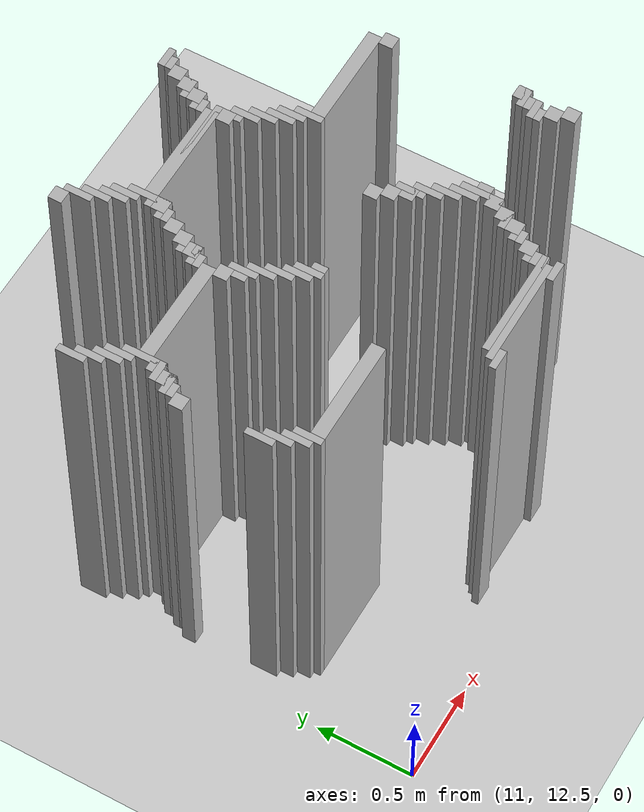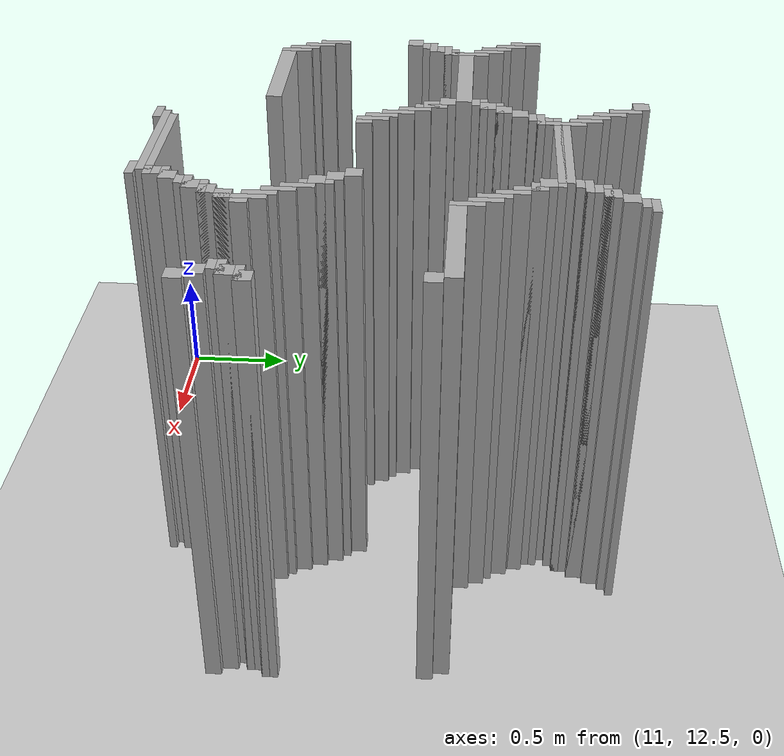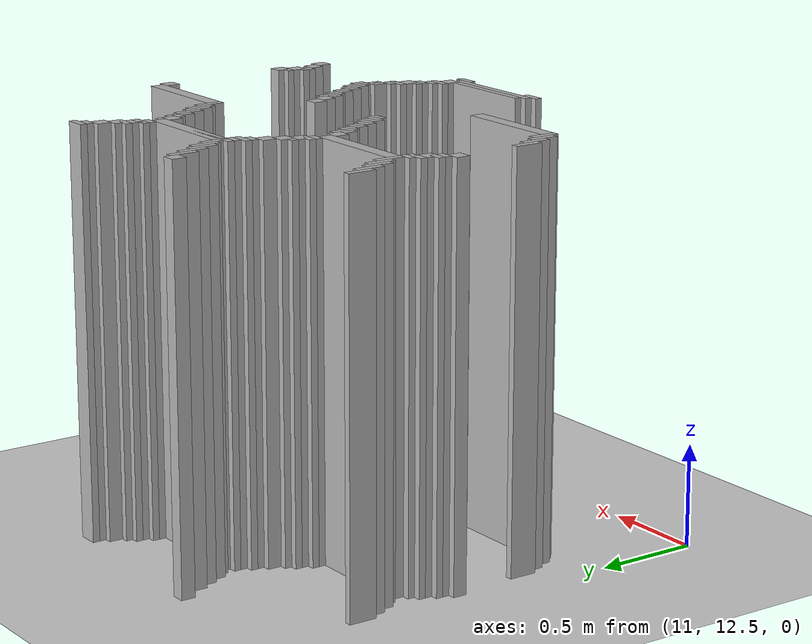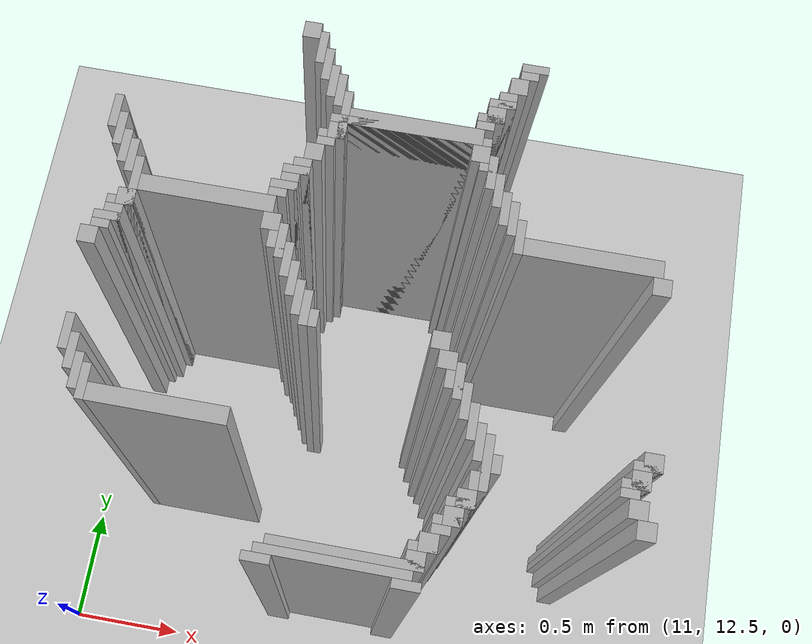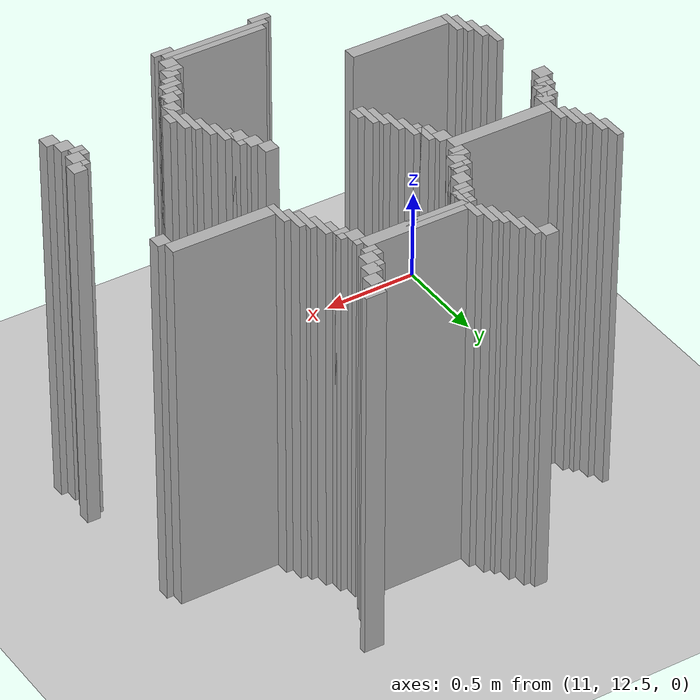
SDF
<sdf version="1.6">
 <world name="slam_world">
  <model name="ground_plane">
   <static>true</static>
   <link name="link">
    <collision name="collision">
     <geometry><plane><normal>0 0 1</normal><size>100 100</size></plane></geometry>
    </collision>
    <visual name="visual">
     <geometry><plane><normal>0 0 1</normal><size>100 100</size></plane></geometry>
     <material>
      <ambient>0.8 0.8 0.8 1</ambient>
      <diffuse>0.8 0.8 0.8 1</diffuse>
      <specular>0.8 0.8 0.8 1</specular>
     </material>
    </visual>
   </link>
  </model>
  <model name="wall_914">
   <static>true</static>
   <pose>11.79814385150812 14.756380510440835 1.0 0 0 0</pose>
   <link name="link">
    <collision name="collision">
     <geometry><box><size>0.06960556844547564 0.06960556844547564 2.0</size></box></geometry>
    </collision>
    <visual name="visual">
     <geometry><box><size>0.06960556844547564 0.06960556844547564 2.0</size></box></geometry>
     <material><ambient>0.5 0.5 0.5 1</ambient><diffuse>0.7 0.7 0.7 1</diffuse></material>
    </visual>
   </link>
  </model>
  <model name="wall_929">
   <static>true</static>
   <pose>11.850348027842227 14.68677494199536 1.0 0 0 0</pose>
   <link name="link">
    <collision name="collision">
     <geometry><box><size>0.03480278422273782 0.13921113689095127 2.0</size></box></geometry>
    </collision>
    <visual name="visual">
     <geometry><box><size>0.03480278422273782 0.13921113689095127 2.0</size></box></geometry>
     <material><ambient>0.5 0.5 0.5 1</ambient><diffuse>0.7 0.7 0.7 1</diffuse></material>
    </visual>
   </link>
  </model>
  <model name="wall_930">
   <static>true</static>
   <pose>12.685614849187935 14.738979118329466 1.0 0 0 0</pose>
   <link name="link">
    <collision name="collision">
     <geometry><box><size>0.10440835266821345 0.03480278422273782 2.0</size></box></geometry>
    </collision>
    <visual name="visual">
     <geometry><box><size>0.10440835266821345 0.03480278422273782 2.0</size></box></geometry>
     <material><ambient>0.5 0.5 0.5 1</ambient><diffuse>0.7 0.7 0.7 1</diffuse></material>
    </visual>
   </link>
  </model>
  <model name="wall_940">
   <static>true</static>
   <pose>12.668213457076565 14.704176334106728 1.0 0 0 0</pose>
   <link name="link">
    <collision name="collision">
     <geometry><box><size>0.06960556844547564 0.03480278422273782 2.0</size></box></geometry>
    </collision>
    <visual name="visual">
     <geometry><box><size>0.06960556844547564 0.03480278422273782 2.0</size></box></geometry>
     <material><ambient>0.5 0.5 0.5 1</ambient><diffuse>0.7 0.7 0.7 1</diffuse></material>
    </visual>
   </link>
  </model>
  <model name="wall_952">
   <static>true</static>
   <pose>11.885150812064964 14.617169373549883 1.0 0 0 0</pose>
   <link name="link">
    <collision name="collision">
     <geometry><box><size>0.03480278422273782 0.13921113689095127 2.0</size></box></geometry>
    </collision>
    <visual name="visual">
     <geometry><box><size>0.03480278422273782 0.13921113689095127 2.0</size></box></geometry>
     <material><ambient>0.5 0.5 0.5 1</ambient><diffuse>0.7 0.7 0.7 1</diffuse></material>
    </visual>
   </link>
  </model>
  <model name="wall_953">
   <static>true</static>
   <pose>12.633410672853827 14.65197215777262 1.0 0 0 0</pose>
   <link name="link">
    <collision name="collision">
     <geometry><box><size>0.06960556844547564 0.06960556844547564 2.0</size></box></geometry>
    </collision>
    <visual name="visual">
     <geometry><box><size>0.06960556844547564 0.06960556844547564 2.0</size></box></geometry>
     <material><ambient>0.5 0.5 0.5 1</ambient><diffuse>0.7 0.7 0.7 1</diffuse></material>
    </visual>
   </link>
  </model>
  <model name="wall_967">
   <static>true</static>
   <pose>11.919953596287703 14.547563805104408 1.0 0 0 0</pose>
   <link name="link">
    <collision name="collision">
     <geometry><box><size>0.03480278422273782 0.13921113689095127 2.0</size></box></geometry>
    </collision>
    <visual name="visual">
     <geometry><box><size>0.03480278422273782 0.13921113689095127 2.0</size></box></geometry>
     <material><ambient>0.5 0.5 0.5 1</ambient><diffuse>0.7 0.7 0.7 1</diffuse></material>
    </visual>
   </link>
  </model>
  <model name="wall_968">
   <static>true</static>
   <pose>12.59860788863109 14.582366589327146 1.0 0 0 0</pose>
   <link name="link">
    <collision name="collision">
     <geometry><box><size>0.06960556844547564 0.06960556844547564 2.0</size></box></geometry>
    </collision>
    <visual name="visual">
     <geometry><box><size>0.06960556844547564 0.06960556844547564 2.0</size></box></geometry>
     <material><ambient>0.5 0.5 0.5 1</ambient><diffuse>0.7 0.7 0.7 1</diffuse></material>
    </visual>
   </link>
  </model>
  <model name="wall_982">
   <static>true</static>
   <pose>11.95475638051044 14.512761020881669 1.0 0 0 0</pose>
   <link name="link">
    <collision name="collision">
     <geometry><box><size>0.03480278422273782 0.13921113689095127 2.0</size></box></geometry>
    </collision>
    <visual name="visual">
     <geometry><box><size>0.03480278422273782 0.13921113689095127 2.0</size></box></geometry>
     <material><ambient>0.5 0.5 0.5 1</ambient><diffuse>0.7 0.7 0.7 1</diffuse></material>
    </visual>
   </link>
  </model>
  <model name="wall_983">
   <static>true</static>
   <pose>12.581206496519721 14.564965197215777 1.0 0 0 0</pose>
   <link name="link">
    <collision name="collision">
     <geometry><box><size>0.10440835266821345 0.03480278422273782 2.0</size></box></geometry>
    </collision>
    <visual name="visual">
     <geometry><box><size>0.10440835266821345 0.03480278422273782 2.0</size></box></geometry>
     <material><ambient>0.5 0.5 0.5 1</ambient><diffuse>0.7 0.7 0.7 1</diffuse></material>
    </visual>
   </link>
  </model>
  <model name="wall_991">
   <static>true</static>
   <pose>12.563805104408353 14.512761020881669 1.0 0 0 0</pose>
   <link name="link">
    <collision name="collision">
     <geometry><box><size>0.06960556844547564 0.06960556844547564 2.0</size></box></geometry>
    </collision>
    <visual name="visual">
     <geometry><box><size>0.06960556844547564 0.06960556844547564 2.0</size></box></geometry>
     <material><ambient>0.5 0.5 0.5 1</ambient><diffuse>0.7 0.7 0.7 1</diffuse></material>
    </visual>
   </link>
  </model>
  <model name="wall_1003">
   <static>true</static>
   <pose>11.989559164733178 14.408352668213457 1.0 0 0 0</pose>
   <link name="link">
    <collision name="collision">
     <geometry><box><size>0.03480278422273782 0.2088167053364269 2.0</size></box></geometry>
    </collision>
    <visual name="visual">
     <geometry><box><size>0.03480278422273782 0.2088167053364269 2.0</size></box></geometry>
     <material><ambient>0.5 0.5 0.5 1</ambient><diffuse>0.7 0.7 0.7 1</diffuse></material>
    </visual>
   </link>
  </model>
  <model name="wall_1004">
   <static>true</static>
   <pose>12.546403712296984 14.4953596287703 1.0 0 0 0</pose>
   <link name="link">
    <collision name="collision">
     <geometry><box><size>0.10440835266821345 0.03480278422273782 2.0</size></box></geometry>
    </collision>
    <visual name="visual">
     <geometry><box><size>0.10440835266821345 0.03480278422273782 2.0</size></box></geometry>
     <material><ambient>0.5 0.5 0.5 1</ambient><diffuse>0.7 0.7 0.7 1</diffuse></material>
    </visual>
   </link>
  </model>
  <model name="wall_1012">
   <static>true</static>
   <pose>12.529002320185615 14.460556844547563 1.0 0 0 0</pose>
   <link name="link">
    <collision name="collision">
     <geometry><box><size>0.06960556844547564 0.03480278422273782 2.0</size></box></geometry>
    </collision>
    <visual name="visual">
     <geometry><box><size>0.06960556844547564 0.03480278422273782 2.0</size></box></geometry>
     <material><ambient>0.5 0.5 0.5 1</ambient><diffuse>0.7 0.7 0.7 1</diffuse></material>
    </visual>
   </link>
  </model>
  <model name="wall_1023">
   <static>true</static>
   <pose>12.267981438515081 14.408352668213457 1.0 0 0 0</pose>
   <link name="link">
    <collision name="collision">
     <geometry><box><size>0.5220417633410672 0.06960556844547564 2.0</size></box></geometry>
    </collision>
    <visual name="visual">
     <geometry><box><size>0.5220417633410672 0.06960556844547564 2.0</size></box></geometry>
     <material><ambient>0.5 0.5 0.5 1</ambient><diffuse>0.7 0.7 0.7 1</diffuse></material>
    </visual>
   </link>
  </model>
  <model name="wall_1035">
   <static>true</static>
   <pose>12.250580046403712 14.390951276102088 1.0 0 0 0</pose>
   <link name="link">
    <collision name="collision">
     <geometry><box><size>0.6264501160092807 0.03480278422273782 2.0</size></box></geometry>
    </collision>
    <visual name="visual">
     <geometry><box><size>0.6264501160092807 0.03480278422273782 2.0</size></box></geometry>
     <material><ambient>0.5 0.5 0.5 1</ambient><diffuse>0.7 0.7 0.7 1</diffuse></material>
    </visual>
   </link>
  </model>
  <model name="wall_1047">
   <static>true</static>
   <pose>11.97215777262181 14.33874709976798 1.0 0 0 0</pose>
   <link name="link">
    <collision name="collision">
     <geometry><box><size>0.06960556844547564 0.06960556844547564 2.0</size></box></geometry>
    </collision>
    <visual name="visual">
     <geometry><box><size>0.06960556844547564 0.06960556844547564 2.0</size></box></geometry>
     <material><ambient>0.5 0.5 0.5 1</ambient><diffuse>0.7 0.7 0.7 1</diffuse></material>
    </visual>
   </link>
  </model>
  <model name="wall_1048">
   <static>true</static>
   <pose>12.529002320185615 14.33874709976798 1.0 0 0 0</pose>
   <link name="link">
    <collision name="collision">
     <geometry><box><size>0.06960556844547564 0.06960556844547564 2.0</size></box></geometry>
    </collision>
    <visual name="visual">
     <geometry><box><size>0.06960556844547564 0.06960556844547564 2.0</size></box></geometry>
     <material><ambient>0.5 0.5 0.5 1</ambient><diffuse>0.7 0.7 0.7 1</diffuse></material>
    </visual>
   </link>
  </model>
  <model name="wall_1059">
   <static>true</static>
   <pose>11.119489559164732 14.269141531322505 1.0 0 0 0</pose>
   <link name="link">
    <collision name="collision">
     <geometry><box><size>0.03480278422273782 0.13921113689095127 2.0</size></box></geometry>
    </collision>
    <visual name="visual">
     <geometry><box><size>0.03480278422273782 0.13921113689095127 2.0</size></box></geometry>
     <material><ambient>0.5 0.5 0.5 1</ambient><diffuse>0.7 0.7 0.7 1</diffuse></material>
    </visual>
   </link>
  </model>
  <model name="wall_1060">
   <static>true</static>
   <pose>11.95475638051044 14.321345707656612 1.0 0 0 0</pose>
   <link name="link">
    <collision name="collision">
     <geometry><box><size>0.10440835266821345 0.03480278422273782 2.0</size></box></geometry>
    </collision>
    <visual name="visual">
     <geometry><box><size>0.10440835266821345 0.03480278422273782 2.0</size></box></geometry>
     <material><ambient>0.5 0.5 0.5 1</ambient><diffuse>0.7 0.7 0.7 1</diffuse></material>
    </visual>
   </link>
  </model>
  <model name="wall_1061">
   <static>true</static>
   <pose>12.581206496519721 14.269141531322505 1.0 0 0 0</pose>
   <link name="link">
    <collision name="collision">
     <geometry><box><size>0.03480278422273782 0.13921113689095127 2.0</size></box></geometry>
    </collision>
    <visual name="visual">
     <geometry><box><size>0.03480278422273782 0.13921113689095127 2.0</size></box></geometry>
     <material><ambient>0.5 0.5 0.5 1</ambient><diffuse>0.7 0.7 0.7 1</diffuse></material>
    </visual>
   </link>
  </model>
  <model name="wall_1069">
   <static>true</static>
   <pose>11.937354988399072 14.286542923433874 1.0 0 0 0</pose>
   <link name="link">
    <collision name="collision">
     <geometry><box><size>0.06960556844547564 0.03480278422273782 2.0</size></box></geometry>
    </collision>
    <visual name="visual">
     <geometry><box><size>0.06960556844547564 0.03480278422273782 2.0</size></box></geometry>
     <material><ambient>0.5 0.5 0.5 1</ambient><diffuse>0.7 0.7 0.7 1</diffuse></material>
    </visual>
   </link>
  </model>
  <model name="wall_1070">
   <static>true</static>
   <pose>12.563805104408353 14.286542923433874 1.0 0 0 0</pose>
   <link name="link">
    <collision name="collision">
     <geometry><box><size>0.06960556844547564 0.03480278422273782 2.0</size></box></geometry>
    </collision>
    <visual name="visual">
     <geometry><box><size>0.06960556844547564 0.03480278422273782 2.0</size></box></geometry>
     <material><ambient>0.5 0.5 0.5 1</ambient><diffuse>0.7 0.7 0.7 1</diffuse></material>
    </visual>
   </link>
  </model>
  <model name="wall_1080">
   <static>true</static>
   <pose>11.154292343387471 14.199535962877029 1.0 0 0 0</pose>
   <link name="link">
    <collision name="collision">
     <geometry><box><size>0.03480278422273782 0.13921113689095127 2.0</size></box></geometry>
    </collision>
    <visual name="visual">
     <geometry><box><size>0.03480278422273782 0.13921113689095127 2.0</size></box></geometry>
     <material><ambient>0.5 0.5 0.5 1</ambient><diffuse>0.7 0.7 0.7 1</diffuse></material>
    </visual>
   </link>
  </model>
  <model name="wall_1081">
   <static>true</static>
   <pose>11.902552204176333 14.234338747099768 1.0 0 0 0</pose>
   <link name="link">
    <collision name="collision">
     <geometry><box><size>0.06960556844547564 0.06960556844547564 2.0</size></box></geometry>
    </collision>
    <visual name="visual">
     <geometry><box><size>0.06960556844547564 0.06960556844547564 2.0</size></box></geometry>
     <material><ambient>0.5 0.5 0.5 1</ambient><diffuse>0.7 0.7 0.7 1</diffuse></material>
    </visual>
   </link>
  </model>
  <model name="wall_1082">
   <static>true</static>
   <pose>12.616009280742459 14.199535962877029 1.0 0 0 0</pose>
   <link name="link">
    <collision name="collision">
     <geometry><box><size>0.03480278422273782 0.13921113689095127 2.0</size></box></geometry>
    </collision>
    <visual name="visual">
     <geometry><box><size>0.03480278422273782 0.13921113689095127 2.0</size></box></geometry>
     <material><ambient>0.5 0.5 0.5 1</ambient><diffuse>0.7 0.7 0.7 1</diffuse></material>
    </visual>
   </link>
  </model>
  <model name="wall_1093">
   <static>true</static>
   <pose>11.189095127610209 14.129930394431554 1.0 0 0 0</pose>
   <link name="link">
    <collision name="collision">
     <geometry><box><size>0.03480278422273782 0.13921113689095127 2.0</size></box></geometry>
    </collision>
    <visual name="visual">
     <geometry><box><size>0.03480278422273782 0.13921113689095127 2.0</size></box></geometry>
     <material><ambient>0.5 0.5 0.5 1</ambient><diffuse>0.7 0.7 0.7 1</diffuse></material>
    </visual>
   </link>
  </model>
  <model name="wall_1094">
   <static>true</static>
   <pose>11.867749419953595 14.164733178654291 1.0 0 0 0</pose>
   <link name="link">
    <collision name="collision">
     <geometry><box><size>0.06960556844547564 0.06960556844547564 2.0</size></box></geometry>
    </collision>
    <visual name="visual">
     <geometry><box><size>0.06960556844547564 0.06960556844547564 2.0</size></box></geometry>
     <material><ambient>0.5 0.5 0.5 1</ambient><diffuse>0.7 0.7 0.7 1</diffuse></material>
    </visual>
   </link>
  </model>
  <model name="wall_1095">
   <static>true</static>
   <pose>12.650812064965196 14.129930394431554 1.0 0 0 0</pose>
   <link name="link">
    <collision name="collision">
     <geometry><box><size>0.03480278422273782 0.13921113689095127 2.0</size></box></geometry>
    </collision>
    <visual name="visual">
     <geometry><box><size>0.03480278422273782 0.13921113689095127 2.0</size></box></geometry>
     <material><ambient>0.5 0.5 0.5 1</ambient><diffuse>0.7 0.7 0.7 1</diffuse></material>
    </visual>
   </link>
  </model>
  <model name="wall_1106">
   <static>true</static>
   <pose>11.223897911832946 14.095127610208817 1.0 0 0 0</pose>
   <link name="link">
    <collision name="collision">
     <geometry><box><size>0.03480278422273782 0.13921113689095127 2.0</size></box></geometry>
    </collision>
    <visual name="visual">
     <geometry><box><size>0.03480278422273782 0.13921113689095127 2.0</size></box></geometry>
     <material><ambient>0.5 0.5 0.5 1</ambient><diffuse>0.7 0.7 0.7 1</diffuse></material>
    </visual>
   </link>
  </model>
  <model name="wall_1107">
   <static>true</static>
   <pose>11.850348027842227 14.147331786542923 1.0 0 0 0</pose>
   <link name="link">
    <collision name="collision">
     <geometry><box><size>0.10440835266821345 0.03480278422273782 2.0</size></box></geometry>
    </collision>
    <visual name="visual">
     <geometry><box><size>0.10440835266821345 0.03480278422273782 2.0</size></box></geometry>
     <material><ambient>0.5 0.5 0.5 1</ambient><diffuse>0.7 0.7 0.7 1</diffuse></material>
    </visual>
   </link>
  </model>
  <model name="wall_1108">
   <static>true</static>
   <pose>12.685614849187935 14.095127610208817 1.0 0 0 0</pose>
   <link name="link">
    <collision name="collision">
     <geometry><box><size>0.03480278422273782 0.13921113689095127 2.0</size></box></geometry>
    </collision>
    <visual name="visual">
     <geometry><box><size>0.03480278422273782 0.13921113689095127 2.0</size></box></geometry>
     <material><ambient>0.5 0.5 0.5 1</ambient><diffuse>0.7 0.7 0.7 1</diffuse></material>
    </visual>
   </link>
  </model>
  <model name="wall_1116">
   <static>true</static>
   <pose>11.832946635730858 14.095127610208817 1.0 0 0 0</pose>
   <link name="link">
    <collision name="collision">
     <geometry><box><size>0.06960556844547564 0.06960556844547564 2.0</size></box></geometry>
    </collision>
    <visual name="visual">
     <geometry><box><size>0.06960556844547564 0.06960556844547564 2.0</size></box></geometry>
     <material><ambient>0.5 0.5 0.5 1</ambient><diffuse>0.7 0.7 0.7 1</diffuse></material>
    </visual>
   </link>
  </model>
  <model name="wall_1126">
   <static>true</static>
   <pose>11.258700696055683 13.990719257540603 1.0 0 0 0</pose>
   <link name="link">
    <collision name="collision">
     <geometry><box><size>0.03480278422273782 0.2088167053364269 2.0</size></box></geometry>
    </collision>
    <visual name="visual">
     <geometry><box><size>0.03480278422273782 0.2088167053364269 2.0</size></box></geometry>
     <material><ambient>0.5 0.5 0.5 1</ambient><diffuse>0.7 0.7 0.7 1</diffuse></material>
    </visual>
   </link>
  </model>
  <model name="wall_1127">
   <static>true</static>
   <pose>11.81554524361949 14.077726218097448 1.0 0 0 0</pose>
   <link name="link">
    <collision name="collision">
     <geometry><box><size>0.10440835266821345 0.03480278422273782 2.0</size></box></geometry>
    </collision>
    <visual name="visual">
     <geometry><box><size>0.10440835266821345 0.03480278422273782 2.0</size></box></geometry>
     <material><ambient>0.5 0.5 0.5 1</ambient><diffuse>0.7 0.7 0.7 1</diffuse></material>
    </visual>
   </link>
  </model>
  <model name="wall_1128">
   <static>true</static>
   <pose>12.720417633410673 14.02552204176334 1.0 0 0 0</pose>
   <link name="link">
    <collision name="collision">
     <geometry><box><size>0.03480278422273782 0.13921113689095127 2.0</size></box></geometry>
    </collision>
    <visual name="visual">
     <geometry><box><size>0.03480278422273782 0.13921113689095127 2.0</size></box></geometry>
     <material><ambient>0.5 0.5 0.5 1</ambient><diffuse>0.7 0.7 0.7 1</diffuse></material>
    </visual>
   </link>
  </model>
  <model name="wall_1136">
   <static>true</static>
   <pose>11.79814385150812 14.042923433874709 1.0 0 0 0</pose>
   <link name="link">
    <collision name="collision">
     <geometry><box><size>0.06960556844547564 0.03480278422273782 2.0</size></box></geometry>
    </collision>
    <visual name="visual">
     <geometry><box><size>0.06960556844547564 0.03480278422273782 2.0</size></box></geometry>
     <material><ambient>0.5 0.5 0.5 1</ambient><diffuse>0.7 0.7 0.7 1</diffuse></material>
    </visual>
   </link>
  </model>
  <model name="wall_1148">
   <static>true</static>
   <pose>11.537122969837586 13.990719257540603 1.0 0 0 0</pose>
   <link name="link">
    <collision name="collision">
     <geometry><box><size>0.5220417633410672 0.06960556844547564 2.0</size></box></geometry>
    </collision>
    <visual name="visual">
     <geometry><box><size>0.5220417633410672 0.06960556844547564 2.0</size></box></geometry>
     <material><ambient>0.5 0.5 0.5 1</ambient><diffuse>0.7 0.7 0.7 1</diffuse></material>
    </visual>
   </link>
  </model>
  <model name="wall_1149">
   <static>true</static>
   <pose>12.998839907192576 13.990719257540603 1.0 0 0 0</pose>
   <link name="link">
    <collision name="collision">
     <geometry><box><size>0.5220417633410672 0.06960556844547564 2.0</size></box></geometry>
    </collision>
    <visual name="visual">
     <geometry><box><size>0.5220417633410672 0.06960556844547564 2.0</size></box></geometry>
     <material><ambient>0.5 0.5 0.5 1</ambient><diffuse>0.7 0.7 0.7 1</diffuse></material>
    </visual>
   </link>
  </model>
  <model name="wall_1163">
   <static>true</static>
   <pose>11.241299303944315 13.921113689095128 1.0 0 0 0</pose>
   <link name="link">
    <collision name="collision">
     <geometry><box><size>0.06960556844547564 0.06960556844547564 2.0</size></box></geometry>
    </collision>
    <visual name="visual">
     <geometry><box><size>0.06960556844547564 0.06960556844547564 2.0</size></box></geometry>
     <material><ambient>0.5 0.5 0.5 1</ambient><diffuse>0.7 0.7 0.7 1</diffuse></material>
    </visual>
   </link>
  </model>
  <model name="wall_1164">
   <static>true</static>
   <pose>11.79814385150812 13.921113689095128 1.0 0 0 0</pose>
   <link name="link">
    <collision name="collision">
     <geometry><box><size>0.06960556844547564 0.06960556844547564 2.0</size></box></geometry>
    </collision>
    <visual name="visual">
     <geometry><box><size>0.06960556844547564 0.06960556844547564 2.0</size></box></geometry>
     <material><ambient>0.5 0.5 0.5 1</ambient><diffuse>0.7 0.7 0.7 1</diffuse></material>
    </visual>
   </link>
  </model>
  <model name="wall_1165">
   <static>true</static>
   <pose>13.259860788863108 13.921113689095128 1.0 0 0 0</pose>
   <link name="link">
    <collision name="collision">
     <geometry><box><size>0.06960556844547564 0.06960556844547564 2.0</size></box></geometry>
    </collision>
    <visual name="visual">
     <geometry><box><size>0.06960556844547564 0.06960556844547564 2.0</size></box></geometry>
     <material><ambient>0.5 0.5 0.5 1</ambient><diffuse>0.7 0.7 0.7 1</diffuse></material>
    </visual>
   </link>
  </model>
  <model name="wall_1179">
   <static>true</static>
   <pose>11.223897911832946 13.903712296983759 1.0 0 0 0</pose>
   <link name="link">
    <collision name="collision">
     <geometry><box><size>0.10440835266821345 0.03480278422273782 2.0</size></box></geometry>
    </collision>
    <visual name="visual">
     <geometry><box><size>0.10440835266821345 0.03480278422273782 2.0</size></box></geometry>
     <material><ambient>0.5 0.5 0.5 1</ambient><diffuse>0.7 0.7 0.7 1</diffuse></material>
    </visual>
   </link>
  </model>
  <model name="wall_1180">
   <static>true</static>
   <pose>11.850348027842227 13.851508120649651 1.0 0 0 0</pose>
   <link name="link">
    <collision name="collision">
     <geometry><box><size>0.03480278422273782 0.13921113689095127 2.0</size></box></geometry>
    </collision>
    <visual name="visual">
     <geometry><box><size>0.03480278422273782 0.13921113689095127 2.0</size></box></geometry>
     <material><ambient>0.5 0.5 0.5 1</ambient><diffuse>0.7 0.7 0.7 1</diffuse></material>
    </visual>
   </link>
  </model>
  <model name="wall_1195">
   <static>true</static>
   <pose>11.206496519721577 13.851508120649651 1.0 0 0 0</pose>
   <link name="link">
    <collision name="collision">
     <geometry><box><size>0.06960556844547564 0.06960556844547564 2.0</size></box></geometry>
    </collision>
    <visual name="visual">
     <geometry><box><size>0.06960556844547564 0.06960556844547564 2.0</size></box></geometry>
     <material><ambient>0.5 0.5 0.5 1</ambient><diffuse>0.7 0.7 0.7 1</diffuse></material>
    </visual>
   </link>
  </model>
  <model name="wall_1196">
   <static>true</static>
   <pose>11.832946635730858 13.851508120649651 1.0 0 0 0</pose>
   <link name="link">
    <collision name="collision">
     <geometry><box><size>0.06960556844547564 0.06960556844547564 2.0</size></box></geometry>
    </collision>
    <visual name="visual">
     <geometry><box><size>0.06960556844547564 0.06960556844547564 2.0</size></box></geometry>
     <material><ambient>0.5 0.5 0.5 1</ambient><diffuse>0.7 0.7 0.7 1</diffuse></material>
    </visual>
   </link>
  </model>
  <model name="wall_1211">
   <static>true</static>
   <pose>11.189095127610209 13.834106728538282 1.0 0 0 0</pose>
   <link name="link">
    <collision name="collision">
     <geometry><box><size>0.10440835266821345 0.03480278422273782 2.0</size></box></geometry>
    </collision>
    <visual name="visual">
     <geometry><box><size>0.10440835266821345 0.03480278422273782 2.0</size></box></geometry>
     <material><ambient>0.5 0.5 0.5 1</ambient><diffuse>0.7 0.7 0.7 1</diffuse></material>
    </visual>
   </link>
  </model>
  <model name="wall_1212">
   <static>true</static>
   <pose>11.885150812064964 13.781902552204176 1.0 0 0 0</pose>
   <link name="link">
    <collision name="collision">
     <geometry><box><size>0.03480278422273782 0.13921113689095127 2.0</size></box></geometry>
    </collision>
    <visual name="visual">
     <geometry><box><size>0.03480278422273782 0.13921113689095127 2.0</size></box></geometry>
     <material><ambient>0.5 0.5 0.5 1</ambient><diffuse>0.7 0.7 0.7 1</diffuse></material>
    </visual>
   </link>
  </model>
  <model name="wall_1222">
   <static>true</static>
   <pose>11.17169373549884 13.799303944315545 1.0 0 0 0</pose>
   <link name="link">
    <collision name="collision">
     <geometry><box><size>0.06960556844547564 0.03480278422273782 2.0</size></box></geometry>
    </collision>
    <visual name="visual">
     <geometry><box><size>0.06960556844547564 0.03480278422273782 2.0</size></box></geometry>
     <material><ambient>0.5 0.5 0.5 1</ambient><diffuse>0.7 0.7 0.7 1</diffuse></material>
    </visual>
   </link>
  </model>
  <model name="wall_1235">
   <static>true</static>
   <pose>11.1368909512761 13.747099767981437 1.0 0 0 0</pose>
   <link name="link">
    <collision name="collision">
     <geometry><box><size>0.06960556844547564 0.06960556844547564 2.0</size></box></geometry>
    </collision>
    <visual name="visual">
     <geometry><box><size>0.06960556844547564 0.06960556844547564 2.0</size></box></geometry>
     <material><ambient>0.5 0.5 0.5 1</ambient><diffuse>0.7 0.7 0.7 1</diffuse></material>
    </visual>
   </link>
  </model>
  <model name="wall_1236">
   <static>true</static>
   <pose>11.919953596287703 13.7122969837587 1.0 0 0 0</pose>
   <link name="link">
    <collision name="collision">
     <geometry><box><size>0.03480278422273782 0.13921113689095127 2.0</size></box></geometry>
    </collision>
    <visual name="visual">
     <geometry><box><size>0.03480278422273782 0.13921113689095127 2.0</size></box></geometry>
     <material><ambient>0.5 0.5 0.5 1</ambient><diffuse>0.7 0.7 0.7 1</diffuse></material>
    </visual>
   </link>
  </model>
  <model name="wall_1252">
   <static>true</static>
   <pose>11.95475638051044 13.642691415313225 1.0 0 0 0</pose>
   <link name="link">
    <collision name="collision">
     <geometry><box><size>0.03480278422273782 0.13921113689095127 2.0</size></box></geometry>
    </collision>
    <visual name="visual">
     <geometry><box><size>0.03480278422273782 0.13921113689095127 2.0</size></box></geometry>
     <material><ambient>0.5 0.5 0.5 1</ambient><diffuse>0.7 0.7 0.7 1</diffuse></material>
    </visual>
   </link>
  </model>
  <model name="wall_1268">
   <static>true</static>
   <pose>11.989559164733178 13.607888631090487 1.0 0 0 0</pose>
   <link name="link">
    <collision name="collision">
     <geometry><box><size>0.03480278422273782 0.13921113689095127 2.0</size></box></geometry>
    </collision>
    <visual name="visual">
     <geometry><box><size>0.03480278422273782 0.13921113689095127 2.0</size></box></geometry>
     <material><ambient>0.5 0.5 0.5 1</ambient><diffuse>0.7 0.7 0.7 1</diffuse></material>
    </visual>
   </link>
  </model>
  <model name="wall_1291">
   <static>true</static>
   <pose>12.024361948955915 13.573085846867748 1.0 0 0 0</pose>
   <link name="link">
    <collision name="collision">
     <geometry><box><size>0.03480278422273782 0.06960556844547564 2.0</size></box></geometry>
    </collision>
    <visual name="visual">
     <geometry><box><size>0.03480278422273782 0.06960556844547564 2.0</size></box></geometry>
     <material><ambient>0.5 0.5 0.5 1</ambient><diffuse>0.7 0.7 0.7 1</diffuse></material>
    </visual>
   </link>
  </model>
  <model name="wall_1292">
   <static>true</static>
   <pose>12.494199535962876 13.573085846867748 1.0 0 0 0</pose>
   <link name="link">
    <collision name="collision">
     <geometry><box><size>0.06960556844547564 0.06960556844547564 2.0</size></box></geometry>
    </collision>
    <visual name="visual">
     <geometry><box><size>0.06960556844547564 0.06960556844547564 2.0</size></box></geometry>
     <material><ambient>0.5 0.5 0.5 1</ambient><diffuse>0.7 0.7 0.7 1</diffuse></material>
    </visual>
   </link>
  </model>
  <model name="wall_1314">
   <static>true</static>
   <pose>12.529002320185615 13.503480278422273 1.0 0 0 0</pose>
   <link name="link">
    <collision name="collision">
     <geometry><box><size>0.06960556844547564 0.06960556844547564 2.0</size></box></geometry>
    </collision>
    <visual name="visual">
     <geometry><box><size>0.06960556844547564 0.06960556844547564 2.0</size></box></geometry>
     <material><ambient>0.5 0.5 0.5 1</ambient><diffuse>0.7 0.7 0.7 1</diffuse></material>
    </visual>
   </link>
  </model>
  <model name="wall_1328">
   <static>true</static>
   <pose>12.581206496519721 13.433874709976797 1.0 0 0 0</pose>
   <link name="link">
    <collision name="collision">
     <geometry><box><size>0.03480278422273782 0.13921113689095127 2.0</size></box></geometry>
    </collision>
    <visual name="visual">
     <geometry><box><size>0.03480278422273782 0.13921113689095127 2.0</size></box></geometry>
     <material><ambient>0.5 0.5 0.5 1</ambient><diffuse>0.7 0.7 0.7 1</diffuse></material>
    </visual>
   </link>
  </model>
  <model name="wall_1342">
   <static>true</static>
   <pose>12.563805104408353 13.433874709976797 1.0 0 0 0</pose>
   <link name="link">
    <collision name="collision">
     <geometry><box><size>0.06960556844547564 0.06960556844547564 2.0</size></box></geometry>
    </collision>
    <visual name="visual">
     <geometry><box><size>0.06960556844547564 0.06960556844547564 2.0</size></box></geometry>
     <material><ambient>0.5 0.5 0.5 1</ambient><diffuse>0.7 0.7 0.7 1</diffuse></material>
    </visual>
   </link>
  </model>
  <model name="wall_1355">
   <static>true</static>
   <pose>11.154292343387471 13.364269141531322 1.0 0 0 0</pose>
   <link name="link">
    <collision name="collision">
     <geometry><box><size>0.03480278422273782 0.13921113689095127 2.0</size></box></geometry>
    </collision>
    <visual name="visual">
     <geometry><box><size>0.03480278422273782 0.13921113689095127 2.0</size></box></geometry>
     <material><ambient>0.5 0.5 0.5 1</ambient><diffuse>0.7 0.7 0.7 1</diffuse></material>
    </visual>
   </link>
  </model>
  <model name="wall_1356">
   <static>true</static>
   <pose>12.616009280742459 13.364269141531322 1.0 0 0 0</pose>
   <link name="link">
    <collision name="collision">
     <geometry><box><size>0.03480278422273782 0.13921113689095127 2.0</size></box></geometry>
    </collision>
    <visual name="visual">
     <geometry><box><size>0.03480278422273782 0.13921113689095127 2.0</size></box></geometry>
     <material><ambient>0.5 0.5 0.5 1</ambient><diffuse>0.7 0.7 0.7 1</diffuse></material>
    </visual>
   </link>
  </model>
  <model name="wall_1378">
   <static>true</static>
   <pose>11.189095127610209 13.294663573085847 1.0 0 0 0</pose>
   <link name="link">
    <collision name="collision">
     <geometry><box><size>0.03480278422273782 0.13921113689095127 2.0</size></box></geometry>
    </collision>
    <visual name="visual">
     <geometry><box><size>0.03480278422273782 0.13921113689095127 2.0</size></box></geometry>
     <material><ambient>0.5 0.5 0.5 1</ambient><diffuse>0.7 0.7 0.7 1</diffuse></material>
    </visual>
   </link>
  </model>
  <model name="wall_1379">
   <static>true</static>
   <pose>12.650812064965196 13.294663573085847 1.0 0 0 0</pose>
   <link name="link">
    <collision name="collision">
     <geometry><box><size>0.03480278422273782 0.13921113689095127 2.0</size></box></geometry>
    </collision>
    <visual name="visual">
     <geometry><box><size>0.03480278422273782 0.13921113689095127 2.0</size></box></geometry>
     <material><ambient>0.5 0.5 0.5 1</ambient><diffuse>0.7 0.7 0.7 1</diffuse></material>
    </visual>
   </link>
  </model>
  <model name="wall_1392">
   <static>true</static>
   <pose>11.223897911832946 13.22505800464037 1.0 0 0 0</pose>
   <link name="link">
    <collision name="collision">
     <geometry><box><size>0.03480278422273782 0.13921113689095127 2.0</size></box></geometry>
    </collision>
    <visual name="visual">
     <geometry><box><size>0.03480278422273782 0.13921113689095127 2.0</size></box></geometry>
     <material><ambient>0.5 0.5 0.5 1</ambient><diffuse>0.7 0.7 0.7 1</diffuse></material>
    </visual>
   </link>
  </model>
  <model name="wall_1393">
   <static>true</static>
   <pose>12.685614849187935 13.22505800464037 1.0 0 0 0</pose>
   <link name="link">
    <collision name="collision">
     <geometry><box><size>0.03480278422273782 0.13921113689095127 2.0</size></box></geometry>
    </collision>
    <visual name="visual">
     <geometry><box><size>0.03480278422273782 0.13921113689095127 2.0</size></box></geometry>
     <material><ambient>0.5 0.5 0.5 1</ambient><diffuse>0.7 0.7 0.7 1</diffuse></material>
    </visual>
   </link>
  </model>
  <model name="wall_1394">
   <static>true</static>
   <pose>13.294663573085847 13.259860788863108 1.0 0 0 0</pose>
   <link name="link">
    <collision name="collision">
     <geometry><box><size>0.06960556844547564 0.06960556844547564 2.0</size></box></geometry>
    </collision>
    <visual name="visual">
     <geometry><box><size>0.06960556844547564 0.06960556844547564 2.0</size></box></geometry>
     <material><ambient>0.5 0.5 0.5 1</ambient><diffuse>0.7 0.7 0.7 1</diffuse></material>
    </visual>
   </link>
  </model>
  <model name="wall_1406">
   <static>true</static>
   <pose>11.258700696055683 13.190255220417633 1.0 0 0 0</pose>
   <link name="link">
    <collision name="collision">
     <geometry><box><size>0.03480278422273782 0.13921113689095127 2.0</size></box></geometry>
    </collision>
    <visual name="visual">
     <geometry><box><size>0.03480278422273782 0.13921113689095127 2.0</size></box></geometry>
     <material><ambient>0.5 0.5 0.5 1</ambient><diffuse>0.7 0.7 0.7 1</diffuse></material>
    </visual>
   </link>
  </model>
  <model name="wall_1407">
   <static>true</static>
   <pose>12.720417633410673 13.155452436194896 1.0 0 0 0</pose>
   <link name="link">
    <collision name="collision">
     <geometry><box><size>0.03480278422273782 0.2088167053364269 2.0</size></box></geometry>
    </collision>
    <visual name="visual">
     <geometry><box><size>0.03480278422273782 0.2088167053364269 2.0</size></box></geometry>
     <material><ambient>0.5 0.5 0.5 1</ambient><diffuse>0.7 0.7 0.7 1</diffuse></material>
    </visual>
   </link>
  </model>
  <model name="wall_1408">
   <static>true</static>
   <pose>13.277262180974477 13.24245939675174 1.0 0 0 0</pose>
   <link name="link">
    <collision name="collision">
     <geometry><box><size>0.10440835266821345 0.03480278422273782 2.0</size></box></geometry>
    </collision>
    <visual name="visual">
     <geometry><box><size>0.10440835266821345 0.03480278422273782 2.0</size></box></geometry>
     <material><ambient>0.5 0.5 0.5 1</ambient><diffuse>0.7 0.7 0.7 1</diffuse></material>
    </visual>
   </link>
  </model>
  <model name="wall_1417">
   <static>true</static>
   <pose>13.259860788863108 13.190255220417633 1.0 0 0 0</pose>
   <link name="link">
    <collision name="collision">
     <geometry><box><size>0.06960556844547564 0.06960556844547564 2.0</size></box></geometry>
    </collision>
    <visual name="visual">
     <geometry><box><size>0.06960556844547564 0.06960556844547564 2.0</size></box></geometry>
     <material><ambient>0.5 0.5 0.5 1</ambient><diffuse>0.7 0.7 0.7 1</diffuse></material>
    </visual>
   </link>
  </model>
  <model name="wall_1428">
   <static>true</static>
   <pose>11.537122969837586 13.155452436194896 1.0 0 0 0</pose>
   <link name="link">
    <collision name="collision">
     <geometry><box><size>0.5220417633410672 0.06960556844547564 2.0</size></box></geometry>
    </collision>
    <visual name="visual">
     <geometry><box><size>0.5220417633410672 0.06960556844547564 2.0</size></box></geometry>
     <material><ambient>0.5 0.5 0.5 1</ambient><diffuse>0.7 0.7 0.7 1</diffuse></material>
    </visual>
   </link>
  </model>
  <model name="wall_1429">
   <static>true</static>
   <pose>12.75522041763341 13.155452436194896 1.0 0 0 0</pose>
   <link name="link">
    <collision name="collision">
     <geometry><box><size>0.03480278422273782 0.06960556844547564 2.0</size></box></geometry>
    </collision>
    <visual name="visual">
     <geometry><box><size>0.03480278422273782 0.06960556844547564 2.0</size></box></geometry>
     <material><ambient>0.5 0.5 0.5 1</ambient><diffuse>0.7 0.7 0.7 1</diffuse></material>
    </visual>
   </link>
  </model>
  <model name="wall_1430">
   <static>true</static>
   <pose>13.24245939675174 13.172853828306264 1.0 0 0 0</pose>
   <link name="link">
    <collision name="collision">
     <geometry><box><size>0.10440835266821345 0.03480278422273782 2.0</size></box></geometry>
    </collision>
    <visual name="visual">
     <geometry><box><size>0.10440835266821345 0.03480278422273782 2.0</size></box></geometry>
     <material><ambient>0.5 0.5 0.5 1</ambient><diffuse>0.7 0.7 0.7 1</diffuse></material>
    </visual>
   </link>
  </model>
  <model name="wall_1439">
   <static>true</static>
   <pose>13.22505800464037 13.138051044083527 1.0 0 0 0</pose>
   <link name="link">
    <collision name="collision">
     <geometry><box><size>0.06960556844547564 0.03480278422273782 2.0</size></box></geometry>
    </collision>
    <visual name="visual">
     <geometry><box><size>0.06960556844547564 0.03480278422273782 2.0</size></box></geometry>
     <material><ambient>0.5 0.5 0.5 1</ambient><diffuse>0.7 0.7 0.7 1</diffuse></material>
    </visual>
   </link>
  </model>
  <model name="wall_1450">
   <static>true</static>
   <pose>12.703016241299304 13.085846867749419 1.0 0 0 0</pose>
   <link name="link">
    <collision name="collision">
     <geometry><box><size>0.06960556844547564 0.06960556844547564 2.0</size></box></geometry>
    </collision>
    <visual name="visual">
     <geometry><box><size>0.06960556844547564 0.06960556844547564 2.0</size></box></geometry>
     <material><ambient>0.5 0.5 0.5 1</ambient><diffuse>0.7 0.7 0.7 1</diffuse></material>
    </visual>
   </link>
  </model>
  <model name="wall_1451">
   <static>true</static>
   <pose>13.259860788863108 13.085846867749419 1.0 0 0 0</pose>
   <link name="link">
    <collision name="collision">
     <geometry><box><size>0.06960556844547564 0.06960556844547564 2.0</size></box></geometry>
    </collision>
    <visual name="visual">
     <geometry><box><size>0.06960556844547564 0.06960556844547564 2.0</size></box></geometry>
     <material><ambient>0.5 0.5 0.5 1</ambient><diffuse>0.7 0.7 0.7 1</diffuse></material>
    </visual>
   </link>
  </model>
  <model name="wall_1470">
   <static>true</static>
   <pose>12.668213457076565 13.016241299303944 1.0 0 0 0</pose>
   <link name="link">
    <collision name="collision">
     <geometry><box><size>0.06960556844547564 0.06960556844547564 2.0</size></box></geometry>
    </collision>
    <visual name="visual">
     <geometry><box><size>0.06960556844547564 0.06960556844547564 2.0</size></box></geometry>
     <material><ambient>0.5 0.5 0.5 1</ambient><diffuse>0.7 0.7 0.7 1</diffuse></material>
    </visual>
   </link>
  </model>
  <model name="wall_1471">
   <static>true</static>
   <pose>13.294663573085847 13.016241299303944 1.0 0 0 0</pose>
   <link name="link">
    <collision name="collision">
     <geometry><box><size>0.06960556844547564 0.06960556844547564 2.0</size></box></geometry>
    </collision>
    <visual name="visual">
     <geometry><box><size>0.06960556844547564 0.06960556844547564 2.0</size></box></geometry>
     <material><ambient>0.5 0.5 0.5 1</ambient><diffuse>0.7 0.7 0.7 1</diffuse></material>
    </visual>
   </link>
  </model>
  <model name="wall_1482">
   <static>true</static>
   <pose>12.650812064965196 12.998839907192576 1.0 0 0 0</pose>
   <link name="link">
    <collision name="collision">
     <geometry><box><size>0.10440835266821345 0.03480278422273782 2.0</size></box></geometry>
    </collision>
    <visual name="visual">
     <geometry><box><size>0.10440835266821345 0.03480278422273782 2.0</size></box></geometry>
     <material><ambient>0.5 0.5 0.5 1</ambient><diffuse>0.7 0.7 0.7 1</diffuse></material>
    </visual>
   </link>
  </model>
  <model name="wall_1494">
   <static>true</static>
   <pose>12.633410672853827 12.946635730858468 1.0 0 0 0</pose>
   <link name="link">
    <collision name="collision">
     <geometry><box><size>0.06960556844547564 0.06960556844547564 2.0</size></box></geometry>
    </collision>
    <visual name="visual">
     <geometry><box><size>0.06960556844547564 0.06960556844547564 2.0</size></box></geometry>
     <material><ambient>0.5 0.5 0.5 1</ambient><diffuse>0.7 0.7 0.7 1</diffuse></material>
    </visual>
   </link>
  </model>
  <model name="wall_1506">
   <static>true</static>
   <pose>12.616009280742459 12.929234338747099 1.0 0 0 0</pose>
   <link name="link">
    <collision name="collision">
     <geometry><box><size>0.10440835266821345 0.03480278422273782 2.0</size></box></geometry>
    </collision>
    <visual name="visual">
     <geometry><box><size>0.10440835266821345 0.03480278422273782 2.0</size></box></geometry>
     <material><ambient>0.5 0.5 0.5 1</ambient><diffuse>0.7 0.7 0.7 1</diffuse></material>
    </visual>
   </link>
  </model>
  <model name="wall_1514">
   <static>true</static>
   <pose>12.59860788863109 12.894431554524362 1.0 0 0 0</pose>
   <link name="link">
    <collision name="collision">
     <geometry><box><size>0.06960556844547564 0.03480278422273782 2.0</size></box></geometry>
    </collision>
    <visual name="visual">
     <geometry><box><size>0.06960556844547564 0.03480278422273782 2.0</size></box></geometry>
     <material><ambient>0.5 0.5 0.5 1</ambient><diffuse>0.7 0.7 0.7 1</diffuse></material>
    </visual>
   </link>
  </model>
  <model name="wall_1524">
   <static>true</static>
   <pose>12.563805104408353 12.842227378190255 1.0 0 0 0</pose>
   <link name="link">
    <collision name="collision">
     <geometry><box><size>0.06960556844547564 0.06960556844547564 2.0</size></box></geometry>
    </collision>
    <visual name="visual">
     <geometry><box><size>0.06960556844547564 0.06960556844547564 2.0</size></box></geometry>
     <material><ambient>0.5 0.5 0.5 1</ambient><diffuse>0.7 0.7 0.7 1</diffuse></material>
    </visual>
   </link>
  </model>
  <model name="wall_1536">
   <static>true</static>
   <pose>12.546403712296984 12.824825986078885 1.0 0 0 0</pose>
   <link name="link">
    <collision name="collision">
     <geometry><box><size>0.10440835266821345 0.03480278422273782 2.0</size></box></geometry>
    </collision>
    <visual name="visual">
     <geometry><box><size>0.10440835266821345 0.03480278422273782 2.0</size></box></geometry>
     <material><ambient>0.5 0.5 0.5 1</ambient><diffuse>0.7 0.7 0.7 1</diffuse></material>
    </visual>
   </link>
  </model>
  <model name="wall_1544">
   <static>true</static>
   <pose>12.529002320185615 12.772621809744779 1.0 0 0 0</pose>
   <link name="link">
    <collision name="collision">
     <geometry><box><size>0.06960556844547564 0.06960556844547564 2.0</size></box></geometry>
    </collision>
    <visual name="visual">
     <geometry><box><size>0.06960556844547564 0.06960556844547564 2.0</size></box></geometry>
     <material><ambient>0.5 0.5 0.5 1</ambient><diffuse>0.7 0.7 0.7 1</diffuse></material>
    </visual>
   </link>
  </model>
  <model name="wall_1555">
   <static>true</static>
   <pose>12.28538283062645 12.75522041763341 1.0 0 0 0</pose>
   <link name="link">
    <collision name="collision">
     <geometry><box><size>0.5568445475638051 0.03480278422273782 2.0</size></box></geometry>
    </collision>
    <visual name="visual">
     <geometry><box><size>0.5568445475638051 0.03480278422273782 2.0</size></box></geometry>
     <material><ambient>0.5 0.5 0.5 1</ambient><diffuse>0.7 0.7 0.7 1</diffuse></material>
    </visual>
   </link>
  </model>
  <model name="wall_1567">
   <static>true</static>
   <pose>12.250580046403712 12.720417633410673 1.0 0 0 0</pose>
   <link name="link">
    <collision name="collision">
     <geometry><box><size>0.5568445475638051 0.03480278422273782 2.0</size></box></geometry>
    </collision>
    <visual name="visual">
     <geometry><box><size>0.5568445475638051 0.03480278422273782 2.0</size></box></geometry>
     <material><ambient>0.5 0.5 0.5 1</ambient><diffuse>0.7 0.7 0.7 1</diffuse></material>
    </visual>
   </link>
  </model>
  <model name="wall_1581">
   <static>true</static>
   <pose>11.989559164733178 12.685614849187935 1.0 0 0 0</pose>
   <link name="link">
    <collision name="collision">
     <geometry><box><size>0.10440835266821345 0.03480278422273782 2.0</size></box></geometry>
    </collision>
    <visual name="visual">
     <geometry><box><size>0.10440835266821345 0.03480278422273782 2.0</size></box></geometry>
     <material><ambient>0.5 0.5 0.5 1</ambient><diffuse>0.7 0.7 0.7 1</diffuse></material>
    </visual>
   </link>
  </model>
  <model name="wall_1582">
   <static>true</static>
   <pose>12.511600928074245 12.685614849187935 1.0 0 0 0</pose>
   <link name="link">
    <collision name="collision">
     <geometry><box><size>0.10440835266821345 0.03480278422273782 2.0</size></box></geometry>
    </collision>
    <visual name="visual">
     <geometry><box><size>0.10440835266821345 0.03480278422273782 2.0</size></box></geometry>
     <material><ambient>0.5 0.5 0.5 1</ambient><diffuse>0.7 0.7 0.7 1</diffuse></material>
    </visual>
   </link>
  </model>
 </world>
</sdf>
